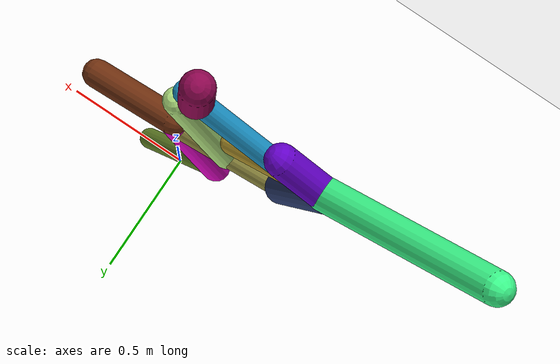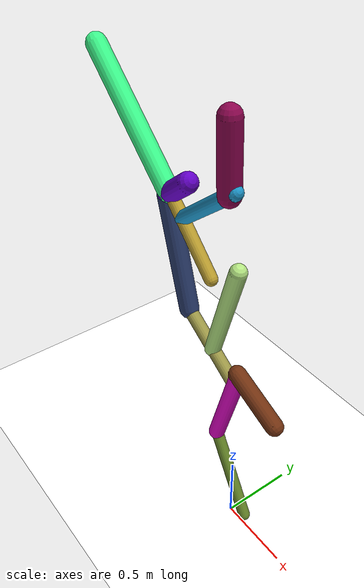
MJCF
<mujoco model="morphology">
  <option timestep="0.01"/>
  <default>
    <default class="/"/>
    <default class="0/"/>
    <default class="0/1/"/>
    <default class="0/1/2/"/>
    <default class="0/1/2/3/"/>
    <default class="0/1/2/4/"/>
    <default class="0/1/2/4/5/"/>
    <default class="0/1/2/4/5/6/"/>
    <default class="0/1/2/4/5/7/"/>
    <default class="0/1/2/4/5/7/8/"/>
    <default class="0/1/2/4/5/7/8/9/"/>
    <default class="0/1/10/"/>
  </default>
  <asset>
    <texture name="texplane" type="2d" builtin="checker" rgb1="0.10000000000000001 0.20000000000000001 0.29999999999999999" rgb2="0.20000000000000001 0.29999999999999999 0.40000000000000002" width="300" height="300"/>
    <material name="MatPlane" class="/" texture="texplane" texrepeat="20 20" specular="1" shininess="1" reflectance="0.5"/>
  </asset>
  <worldbody>
    <light name="//unnamed_light_0" class="/" directional="true" pos="0 0 1.5" dir="0 0 -1.3" cutoff="100" exponent="1" diffuse="1 1 1" specular="0.10000000000000001 0.10000000000000001 0.10000000000000001"/>
    <geom name="ground" class="/" type="plane" size="15 15 0.5" material="MatPlane" rgba="1 1 1 1"/>
    <site name="body" class="/" size="9.9999999999999995e-07 9.9999999999999995e-07 9.9999999999999995e-07" pos="0 0 1.3718687057495118"/>
    <body pos="0 0 1.3718687057495118" name="0/">
      <joint name="0/rootx/" class="/" type="slide" axis="1 0 0" limited="false" stiffness="0" armature="0" damping="0"/>
      <joint name="0/rootz/" class="/" type="slide" axis="0 0 1" limited="false" stiffness="0" armature="0" damping="0"/>
      <joint name="0/rooty/" class="/" type="hinge" axis="0 1 0" limited="false" stiffness="0" armature="0" damping="0"/>
      <geom name="0/geom" class="0/" type="capsule" contype="1" conaffinity="1" condim="3" size="0.055966174511568878" rgba="0.44313332524770488 0.19186535641296221 0.064812494364438811 1" friction="0.59999999999999998 0.10000000000000001 0.10000000000000001" fromto="0 0 0 0.35041066005827393 0 -0.15514460153925902"/>
      <site name="0/end0" class="0/" size="0.0050000000000000001" pos="0.35041066005827393 0 -0.15514460153925902"/>
      <site name="0/attach1" class="0/" size="9.9999999999999995e-07 9.9999999999999995e-07 9.9999999999999995e-07" pos="0.012640940844800132 0 -0.0055967867248151474"/>
      <body pos="0.012640940844800132 0 -0.0055967867248151474" name="0/1/">
        <joint name="0/1/joint/" class="0/" type="hinge" axis="0 1 0" limited="true" range="-32.65148809903063 32.65148809903063"/>
        <geom name="0/1/geom" class="0/1/" type="capsule" contype="1" conaffinity="1" condim="3" size="0.054655275985746099" rgba="0.88239396685646609 0.035400947245696757 0.77675995984342194 1" friction="0.59999999999999998 0.10000000000000001 0.10000000000000001" fromto="0 0 0 -0.19394345045389016 0 -0.67455773322658841"/>
        <site name="0/1/end1" class="0/1/" size="0.0050000000000000001" pos="-0.19394345045389016 0 -0.67455773322658841"/>
        <site name="0/1/attach2" class="0/1/" size="9.9999999999999995e-07 9.9999999999999995e-07 9.9999999999999995e-07" pos="-0.030184873931063484 0 -0.10498647976519029"/>
        <body pos="-0.030184873931063484 0 -0.10498647976519029" name="0/1/2/">
          <joint name="0/1/2/joint/" class="0/1/" type="hinge" axis="0 1 0" limited="true" range="-46.513732955999529 46.513732955999529"/>
          <geom name="0/1/2/geom" class="0/1/2/" type="capsule" contype="1" conaffinity="1" condim="3" size="0.042875915051510186" rgba="0.61291097289630381 0.59207551628822441 0.27666223328914741 1" friction="0.59999999999999998 0.10000000000000001 0.10000000000000001" fromto="0 0 0 -0.47428910181173023 0 0.31060182832078143"/>
          <site name="0/1/2/end2" class="0/1/2/" size="0.0050000000000000001" pos="-0.47428910181173023 0 0.31060182832078143"/>
          <site name="0/1/2/attach3" class="0/1/2/" size="9.9999999999999995e-07 9.9999999999999995e-07 9.9999999999999995e-07" pos="-0.2229557531718564 0 0.14600897280853933"/>
          <body pos="-0.2229557531718564 0 0.14600897280853933" name="0/1/2/3/">
            <geom name="0/1/2/3/geom" class="0/1/2/3/" type="capsule" contype="1" conaffinity="1" condim="3" size="0.052159894893671462" rgba="0.70503797566639126 0.8978111968050706 0.50649108196410997 1" friction="0.59999999999999998 0.10000000000000001 0.10000000000000001" fromto="0 0 0 0.21062927907575912 0 0.69484399433204436"/>
            <site name="0/1/2/3/end3" class="0/1/2/3/" size="0.0050000000000000001" pos="0.21062927907575912 0 0.69484399433204436"/>
          </body>
          <site name="0/1/2/attach4" class="0/1/2/" size="9.9999999999999995e-07 9.9999999999999995e-07 9.9999999999999995e-07" pos="-0.46516906894772247 0 0.30462931309518204"/>
          <body pos="-0.46516906894772247 0 0.30462931309518204" name="0/1/2/4/">
            <joint name="0/1/2/4/joint/" class="0/1/2/" type="hinge" axis="0 1 0" limited="true" range="-56.451623428896383 56.451623428896383"/>
            <geom name="0/1/2/4/geom" class="0/1/2/4/" type="capsule" contype="1" conaffinity="1" condim="3" size="0.062519324296496301" rgba="0.17042853284810044 0.23988418711167148 0.43607134567925299 1" friction="0.59999999999999998 0.10000000000000001 0.10000000000000001" fromto="0 0 0 -0.20331127995527165 0 0.72526793102180487"/>
            <site name="0/1/2/4/end4" class="0/1/2/4/" size="0.0050000000000000001" pos="-0.20331127995527165 0 0.72526793102180487"/>
            <site name="0/1/2/4/attach5" class="0/1/2/4/" size="9.9999999999999995e-07 9.9999999999999995e-07 9.9999999999999995e-07" pos="-0.20063036283836866 0 0.71570435338339278"/>
            <body pos="-0.20063036283836866 0 0.71570435338339278" name="0/1/2/4/5/">
              <joint name="0/1/2/4/5/joint/" class="0/1/2/4/" type="hinge" axis="0 1 0" limited="true" range="-51.479990454492238 51.479990454492238"/>
              <geom name="0/1/2/4/5/geom" class="0/1/2/4/5/" type="capsule" contype="1" conaffinity="1" condim="3" size="0.063234646744134926" rgba="0.38942925036996279 0.0023025499771960334 0.78193411980993444 1" friction="0.59999999999999998 0.10000000000000001 0.10000000000000001" fromto="0 0 0 0.2031314431466944 0 0.16034745792692751"/>
              <site name="0/1/2/4/5/end5" class="0/1/2/4/5/" size="0.0050000000000000001" pos="0.2031314431466944 0 0.16034745792692751"/>
              <site name="0/1/2/4/5/attach6" class="0/1/2/4/5/" size="9.9999999999999995e-07 9.9999999999999995e-07 9.9999999999999995e-07" pos="0.021031502261943343 0 0.016601801630738426"/>
              <body pos="0.021031502261943343 0 0.016601801630738426" name="0/1/2/4/5/6/">
                <joint name="0/1/2/4/5/6/joint/" class="0/1/2/4/5/" type="hinge" axis="0 1 0" limited="true" range="-69.462687635668729 69.462687635668729"/>
                <geom name="0/1/2/4/5/6/geom" class="0/1/2/4/5/6/" type="capsule" contype="1" conaffinity="1" condim="3" size="0.065077689734957408" rgba="0.22971863473930809 0.97799617341900968 0.54495322494429932 1" friction="0.59999999999999998 0.10000000000000001 0.10000000000000001" fromto="0 0 0 -0.69657676975862626 0 0.6541337697255114"/>
                <site name="0/1/2/4/5/6/end6" class="0/1/2/4/5/6/" size="0.0050000000000000001" pos="-0.69657676975862626 0 0.6541337697255114"/>
              </body>
              <site name="0/1/2/4/5/attach7" class="0/1/2/4/5/" size="9.9999999999999995e-07 9.9999999999999995e-07 9.9999999999999995e-07" pos="0.030336050332510193 0 0.023946605601814684"/>
              <body pos="0.030336050332510193 0 0.023946605601814684" name="0/1/2/4/5/7/">
                <geom name="0/1/2/4/5/7/geom" class="0/1/2/4/5/7/" type="capsule" contype="1" conaffinity="1" condim="3" size="0.041841429389755339" rgba="0.73365028234825458 0.61710922707836602 0.18572083048370813 1" friction="0.59999999999999998 0.10000000000000001 0.10000000000000001" fromto="0 0 0 0.38744370955424889 0 -0.38553273445973335"/>
                <site name="0/1/2/4/5/7/end7" class="0/1/2/4/5/7/" size="0.0050000000000000001" pos="0.38744370955424889 0 -0.38553273445973335"/>
                <site name="0/1/2/4/5/7/attach8" class="0/1/2/4/5/7/" size="9.9999999999999995e-07 9.9999999999999995e-07 9.9999999999999995e-07" pos="0.11406366163768947 0 -0.11350106941795864"/>
                <body pos="0.11406366163768947 0 -0.11350106941795864" name="0/1/2/4/5/7/8/">
                  <joint name="0/1/2/4/5/7/8/joint/" class="0/1/2/4/5/7/" type="hinge" axis="0 1 0" limited="true" range="-39.277109441606584 39.277109441606584"/>
                  <geom name="0/1/2/4/5/7/8/geom" class="0/1/2/4/5/7/8/" type="capsule" contype="1" conaffinity="1" condim="3" size="0.044777578358063772" rgba="0.1107809974060211 0.58500539598134327 0.78779155174225368 1" friction="0.59999999999999998 0.10000000000000001 0.10000000000000001" fromto="0 0 0 0.46167399686343735 0 0.36662206784685636"/>
                  <site name="0/1/2/4/5/7/8/end8" class="0/1/2/4/5/7/8/" size="0.0050000000000000001" pos="0.46167399686343735 0 0.36662206784685636"/>
                  <site name="0/1/2/4/5/7/8/attach9" class="0/1/2/4/5/7/8/" size="9.9999999999999995e-07 9.9999999999999995e-07 9.9999999999999995e-07" pos="0.41644874991495939 0 0.33070803831999906"/>
                  <body pos="0.41644874991495939 0 0.33070803831999906" name="0/1/2/4/5/7/8/9/">
                    <joint name="0/1/2/4/5/7/8/9/joint/" class="0/1/2/4/5/7/8/" type="hinge" axis="0 1 0" limited="true" range="-58.38737350175888 58.38737350175888"/>
                    <geom name="0/1/2/4/5/7/8/9/geom" class="0/1/2/4/5/7/8/9/" type="capsule" contype="1" conaffinity="1" condim="3" size="0.065927628638102226" rgba="0.55210174367449827 0.022667746201956662 0.31059112664703992 1" friction="0.59999999999999998 0.10000000000000001 0.10000000000000001" fromto="0 0 0 -0.013217076876590017 0 0.40742430161895893"/>
                    <site name="0/1/2/4/5/7/8/9/end9" class="0/1/2/4/5/7/8/9/" size="0.0050000000000000001" pos="-0.013217076876590017 0 0.40742430161895893"/>
                  </body>
                </body>
              </body>
            </body>
          </body>
        </body>
        <site name="0/1/attach10" class="0/1/" size="9.9999999999999995e-07 9.9999999999999995e-07 9.9999999999999995e-07" pos="-0.19384794671648345 0 -0.6742255601912579"/>
        <body pos="-0.19384794671648345 0 -0.6742255601912579" name="0/1/10/">
          <joint name="0/1/10/joint/" class="0/1/" type="hinge" axis="0 1 0" limited="true" range="-43.930565924400518 43.930565924400518"/>
          <geom name="0/1/10/geom" class="0/1/10/" type="capsule" contype="1" conaffinity="1" condim="3" size="0.040711715735526323" rgba="0.40954853361280286 0.53805709185702233 0.16575910656133874 1" friction="0.59999999999999998 0.10000000000000001 0.10000000000000001" fromto="0 0 0 0.32482684309549814 0 -0.5920463837562856"/>
          <site name="0/1/10/end10" class="0/1/10/" size="0.0050000000000000001" pos="0.32482684309549814 0 -0.5920463837562856"/>
        </body>
      </body>
      <camera name="0/side" class="0/" mode="trackcom" pos="0.40000000000000002 -4 0.20000000000000001" quat="0.70699999999999996 0.70699999999999996 0 0"/>
    </body>
  </worldbody>
  <actuator>
    <motor name="0/1/motor" class="0/1/" ctrllimited="true" ctrlrange="-1 1" gear="65" joint="0/1/joint/"/>
    <motor name="0/1/2/motor" class="0/1/2/" ctrllimited="true" ctrlrange="-1 1" gear="61" joint="0/1/2/joint/"/>
    <motor name="0/1/2/4/motor" class="0/1/2/4/" ctrllimited="true" ctrlrange="-1 1" gear="84" joint="0/1/2/4/joint/"/>
    <motor name="0/1/2/4/5/motor" class="0/1/2/4/5/" ctrllimited="true" ctrlrange="-1 1" gear="54" joint="0/1/2/4/5/joint/"/>
    <motor name="0/1/2/4/5/6/motor" class="0/1/2/4/5/6/" ctrllimited="true" ctrlrange="-1 1" gear="80" joint="0/1/2/4/5/6/joint/"/>
    <motor name="0/1/2/4/5/7/8/motor" class="0/1/2/4/5/7/8/" ctrllimited="true" ctrlrange="-1 1" gear="64" joint="0/1/2/4/5/7/8/joint/"/>
    <motor name="0/1/2/4/5/7/8/9/motor" class="0/1/2/4/5/7/8/9/" ctrllimited="true" ctrlrange="-1 1" gear="81" joint="0/1/2/4/5/7/8/9/joint/"/>
    <motor name="0/1/10/motor" class="0/1/10/" ctrllimited="true" ctrlrange="-1 1" gear="83" joint="0/1/10/joint/"/>
  </actuator>
  <sensor>
    <subtreelinvel name="velocity" body="0/"/>
  </sensor>
</mujoco>
